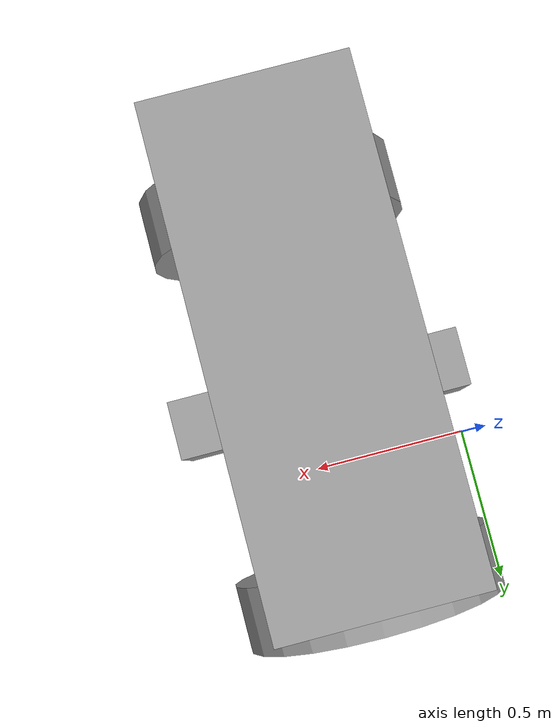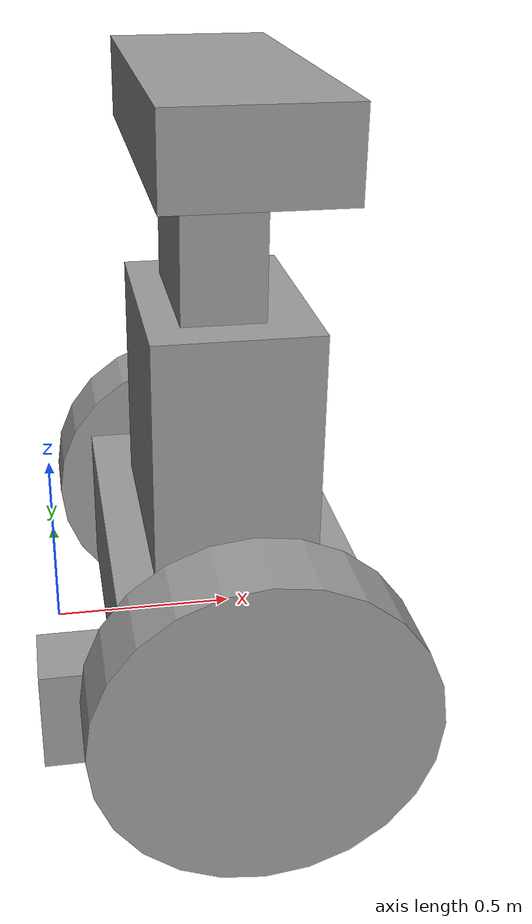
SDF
<?xml version='1.0'?>
<sdf version='1.6'>
  <model name='robo1'>
    <link name='link_0'>
      <pose frame=''>0.431648 -0.223766 0.237143 0 -0 0</pose>
      <inertial>
        <mass>1</mass>
        <inertia>
          <ixx>0.166667</ixx>
          <ixy>0</ixy>
          <ixz>0</ixz>
          <iyy>0.166667</iyy>
          <iyz>0</iyz>
          <izz>0.166667</izz>
        </inertia>
        <pose frame=''>0 0 0 0 -0 0</pose>
      </inertial>
      <self_collide>0</self_collide>
      <kinematic>0</kinematic>
      <gravity>1</gravity>
      <visual name='visual'>
        <pose frame=''>0 0 0 0 -0 0</pose>
        <geometry>
          <box>
            <size>0.6 1 0.4</size>
          </box>
        </geometry>
        <material>
          <lighting>1</lighting>
          <script>
            <uri>file://media/materials/scripts/gazebo.material</uri>
            <name>Gazebo/Grey</name>
          </script>
          <shader type='pixel'>
            <normal_map>__default__</normal_map>
          </shader>
          <ambient>0.3 0.3 0.3 1</ambient>
          <diffuse>0.7 0.7 0.7 1</diffuse>
          <specular>0.01 0.01 0.01 1</specular>
          <emissive>0 0 0 1</emissive>
        </material>
        <transparency>0</transparency>
        <cast_shadows>1</cast_shadows>
      </visual>
      <collision name='collision'>
        <laser_retro>0</laser_retro>
        <max_contacts>10</max_contacts>
        <pose frame=''>0 0 0 0 -0 0</pose>
        <geometry>
          <box>
            <size>0.6 1 0.4</size>
          </box>
        </geometry>
        <surface>
          <friction>
            <ode>
              <mu>1</mu>
              <mu2>1</mu2>
              <fdir1>0 0 0</fdir1>
              <slip1>0</slip1>
              <slip2>0</slip2>
            </ode>
            <torsional>
              <coefficient>1</coefficient>
              <patch_radius>0</patch_radius>
              <surface_radius>0</surface_radius>
              <use_patch_radius>1</use_patch_radius>
              <ode>
                <slip>0</slip>
              </ode>
            </torsional>
          </friction>
          <bounce>
            <restitution_coefficient>0</restitution_coefficient>
            <threshold>1e+06</threshold>
          </bounce>
          <contact>
            <collide_without_contact>0</collide_without_contact>
            <collide_without_contact_bitmask>1</collide_without_contact_bitmask>
            <collide_bitmask>1</collide_bitmask>
            <ode>
              <soft_cfm>0</soft_cfm>
              <soft_erp>0.2</soft_erp>
              <kp>1e+13</kp>
              <kd>1</kd>
              <max_vel>0.01</max_vel>
              <min_depth>0</min_depth>
            </ode>
            <bullet>
              <split_impulse>1</split_impulse>
              <split_impulse_penetration_threshold>-0.01</split_impulse_penetration_threshold>
              <soft_cfm>0</soft_cfm>
              <soft_erp>0.2</soft_erp>
              <kp>1e+13</kp>
              <kd>1</kd>
            </bullet>
          </contact>
        </surface>
      </collision>
    </link>
    <link name='link_10'>
      <pose frame=''>0.431648 -0.223766 1.47714 0 -0 0</pose>
      <inertial>
        <mass>1</mass>
        <inertia>
          <ixx>0.166667</ixx>
          <ixy>0</ixy>
          <ixz>0</ixz>
          <iyy>0.166667</iyy>
          <iyz>0</iyz>
          <izz>0.166667</izz>
        </inertia>
        <pose frame=''>0 0 0 0 -0 0</pose>
      </inertial>
      <self_collide>0</self_collide>
      <kinematic>0</kinematic>
      <visual name='visual'>
        <pose frame=''>0 0 0 0 -0 0</pose>
        <geometry>
          <box>
            <size>0.4 1 0.2</size>
          </box>
        </geometry>
        <material>
          <lighting>1</lighting>
          <script>
            <uri>file://media/materials/scripts/gazebo.material</uri>
            <name>Gazebo/Grey</name>
          </script>
          <shader type='pixel'>
            <normal_map>__default__</normal_map>
          </shader>
          <ambient>0.3 0.3 0.3 1</ambient>
          <diffuse>0.7 0.7 0.7 1</diffuse>
          <specular>0.01 0.01 0.01 1</specular>
          <emissive>0 0 0 1</emissive>
        </material>
        <transparency>0</transparency>
        <cast_shadows>1</cast_shadows>
      </visual>
      <collision name='collision'>
        <laser_retro>0</laser_retro>
        <max_contacts>10</max_contacts>
        <pose frame=''>0 0 0 0 -0 0</pose>
        <geometry>
          <box>
            <size>0.4 1 0.2</size>
          </box>
        </geometry>
        <surface>
          <friction>
            <ode>
              <mu>1</mu>
              <mu2>1</mu2>
              <fdir1>0 0 0</fdir1>
              <slip1>0</slip1>
              <slip2>0</slip2>
            </ode>
            <torsional>
              <coefficient>1</coefficient>
              <patch_radius>0</patch_radius>
              <surface_radius>0</surface_radius>
              <use_patch_radius>1</use_patch_radius>
              <ode>
                <slip>0</slip>
              </ode>
            </torsional>
          </friction>
          <bounce>
            <restitution_coefficient>0</restitution_coefficient>
            <threshold>1e+06</threshold>
          </bounce>
          <contact>
            <collide_without_contact>0</collide_without_contact>
            <collide_without_contact_bitmask>1</collide_without_contact_bitmask>
            <collide_bitmask>1</collide_bitmask>
            <ode>
              <soft_cfm>0</soft_cfm>
              <soft_erp>0.2</soft_erp>
              <kp>1e+13</kp>
              <kd>1</kd>
              <max_vel>0.01</max_vel>
              <min_depth>0</min_depth>
            </ode>
            <bullet>
              <split_impulse>1</split_impulse>
              <split_impulse_penetration_threshold>-0.01</split_impulse_penetration_threshold>
              <soft_cfm>0</soft_cfm>
              <soft_erp>0.2</soft_erp>
              <kp>1e+13</kp>
              <kd>1</kd>
            </bullet>
          </contact>
        </surface>
      </collision>
    </link>
    <link name='link_2'>
      <pose frame=''>0.431648 -0.823804 0.257141 1.5707 -0 0</pose>
      <inertial>
        <mass>1</mass>
        <inertia>
          <ixx>0.145833</ixx>
          <ixy>0</ixy>
          <ixz>0</ixz>
          <iyy>0.145833</iyy>
          <iyz>0</iyz>
          <izz>0.125</izz>
        </inertia>
        <pose frame=''>0 0 0 0 -0 0</pose>
      </inertial>
      <self_collide>0</self_collide>
      <kinematic>0</kinematic>
      <visual name='visual'>
        <pose frame=''>0 0 0 0 -0 0</pose>
        <geometry>
          <cylinder>
            <radius>0.4</radius>
            <length>0.2</length>
          </cylinder>
        </geometry>
        <material>
          <lighting>1</lighting>
          <script>
            <uri>file://media/materials/scripts/gazebo.material</uri>
            <name>Gazebo/Grey</name>
          </script>
          <shader type='pixel'>
            <normal_map>__default__</normal_map>
          </shader>
          <ambient>0.3 0.3 0.3 1</ambient>
          <diffuse>0.7 0.7 0.7 1</diffuse>
          <specular>0.01 0.01 0.01 1</specular>
          <emissive>0 0 0 1</emissive>
        </material>
        <transparency>0</transparency>
        <cast_shadows>1</cast_shadows>
      </visual>
      <collision name='collision'>
        <laser_retro>0</laser_retro>
        <max_contacts>10</max_contacts>
        <pose frame=''>0 0 0 0 -0 0</pose>
        <geometry>
          <cylinder>
            <radius>0.4</radius>
            <length>0.2</length>
          </cylinder>
        </geometry>
        <surface>
          <friction>
            <ode>
              <mu>1</mu>
              <mu2>1</mu2>
              <fdir1>0 0 0</fdir1>
              <slip1>0</slip1>
              <slip2>0</slip2>
            </ode>
            <torsional>
              <coefficient>1</coefficient>
              <patch_radius>0</patch_radius>
              <surface_radius>0</surface_radius>
              <use_patch_radius>1</use_patch_radius>
              <ode>
                <slip>0</slip>
              </ode>
            </torsional>
          </friction>
          <bounce>
            <restitution_coefficient>0</restitution_coefficient>
            <threshold>1e+06</threshold>
          </bounce>
          <contact>
            <collide_without_contact>0</collide_without_contact>
            <collide_without_contact_bitmask>1</collide_without_contact_bitmask>
            <collide_bitmask>1</collide_bitmask>
            <ode>
              <soft_cfm>0</soft_cfm>
              <soft_erp>0.2</soft_erp>
              <kp>1e+13</kp>
              <kd>1</kd>
              <max_vel>0.01</max_vel>
              <min_depth>0</min_depth>
            </ode>
            <bullet>
              <split_impulse>1</split_impulse>
              <split_impulse_penetration_threshold>-0.01</split_impulse_penetration_threshold>
              <soft_cfm>0</soft_cfm>
              <soft_erp>0.2</soft_erp>
              <kp>1e+13</kp>
              <kd>1</kd>
            </bullet>
          </contact>
        </surface>
      </collision>
    </link>
    <link name='link_2_clone'>
      <pose frame=''>0.431648 0.376273 0.257143 1.5707 -0 0</pose>
      <inertial>
        <mass>1</mass>
        <inertia>
          <ixx>0.145833</ixx>
          <ixy>0</ixy>
          <ixz>0</ixz>
          <iyy>0.145833</iyy>
          <iyz>0</iyz>
          <izz>0.125</izz>
        </inertia>
        <pose frame=''>0 0 0 0 -0 0</pose>
      </inertial>
      <self_collide>0</self_collide>
      <kinematic>0</kinematic>
      <visual name='visual'>
        <pose frame=''>0 0 0 0 -0 0</pose>
        <geometry>
          <cylinder>
            <radius>0.4</radius>
            <length>0.2</length>
          </cylinder>
        </geometry>
        <material>
          <lighting>1</lighting>
          <script>
            <uri>file://media/materials/scripts/gazebo.material</uri>
            <name>Gazebo/Grey</name>
          </script>
          <shader type='pixel'>
            <normal_map>__default__</normal_map>
          </shader>
          <ambient>0.3 0.3 0.3 1</ambient>
          <diffuse>0.7 0.7 0.7 1</diffuse>
          <specular>0.01 0.01 0.01 1</specular>
          <emissive>0 0 0 1</emissive>
        </material>
        <transparency>0</transparency>
        <cast_shadows>1</cast_shadows>
      </visual>
      <collision name='collision'>
        <laser_retro>0</laser_retro>
        <max_contacts>10</max_contacts>
        <pose frame=''>0 0 0 0 -0 0</pose>
        <geometry>
          <cylinder>
            <radius>0.4</radius>
            <length>0.2</length>
          </cylinder>
        </geometry>
        <surface>
          <friction>
            <ode>
              <mu>1</mu>
              <mu2>1</mu2>
              <fdir1>0 0 0</fdir1>
              <slip1>0</slip1>
              <slip2>0</slip2>
            </ode>
            <torsional>
              <coefficient>1</coefficient>
              <patch_radius>0</patch_radius>
              <surface_radius>0</surface_radius>
              <use_patch_radius>1</use_patch_radius>
              <ode>
                <slip>0</slip>
              </ode>
            </torsional>
          </friction>
          <bounce>
            <restitution_coefficient>0</restitution_coefficient>
            <threshold>1e+06</threshold>
          </bounce>
          <contact>
            <collide_without_contact>0</collide_without_contact>
            <collide_without_contact_bitmask>1</collide_without_contact_bitmask>
            <collide_bitmask>1</collide_bitmask>
            <ode>
              <soft_cfm>0</soft_cfm>
              <soft_erp>0.2</soft_erp>
              <kp>1e+13</kp>
              <kd>1</kd>
              <max_vel>0.01</max_vel>
              <min_depth>0</min_depth>
            </ode>
            <bullet>
              <split_impulse>1</split_impulse>
              <split_impulse_penetration_threshold>-0.01</split_impulse_penetration_threshold>
              <soft_cfm>0</soft_cfm>
              <soft_erp>0.2</soft_erp>
              <kp>1e+13</kp>
              <kd>1</kd>
            </bullet>
          </contact>
        </surface>
      </collision>
    </link>
    <link name='link_4'>
      <pose frame=''>0.431648 -0.243766 -0.112857 0 -0 0</pose>
      <inertial>
        <mass>1</mass>
        <inertia>
          <ixx>0.166667</ixx>
          <ixy>0</ixy>
          <ixz>0</ixz>
          <iyy>0.166667</iyy>
          <iyz>0</iyz>
          <izz>0.166667</izz>
        </inertia>
        <pose frame=''>0 0 0 0 -0 0</pose>
      </inertial>
      <self_collide>0</self_collide>
      <kinematic>0</kinematic>
      <visual name='visual'>
        <pose frame=''>0 0 0 0 -0 0</pose>
        <geometry>
          <box>
            <size>1 0.2 0.3</size>
          </box>
        </geometry>
        <material>
          <lighting>1</lighting>
          <script>
            <uri>file://media/materials/scripts/gazebo.material</uri>
            <name>Gazebo/Grey</name>
          </script>
          <shader type='pixel'>
            <normal_map>__default__</normal_map>
          </shader>
          <ambient>0.3 0.3 0.3 1</ambient>
          <diffuse>0.7 0.7 0.7 1</diffuse>
          <specular>0.01 0.01 0.01 1</specular>
          <emissive>0 0 0 1</emissive>
        </material>
        <transparency>0</transparency>
        <cast_shadows>1</cast_shadows>
      </visual>
      <collision name='collision'>
        <laser_retro>0</laser_retro>
        <max_contacts>10</max_contacts>
        <pose frame=''>0 0 0 0 -0 0</pose>
        <geometry>
          <box>
            <size>1 0.2 0.3</size>
          </box>
        </geometry>
        <surface>
          <friction>
            <ode>
              <mu>1</mu>
              <mu2>1</mu2>
              <fdir1>0 0 0</fdir1>
              <slip1>0</slip1>
              <slip2>0</slip2>
            </ode>
            <torsional>
              <coefficient>1</coefficient>
              <patch_radius>0</patch_radius>
              <surface_radius>0</surface_radius>
              <use_patch_radius>1</use_patch_radius>
              <ode>
                <slip>0</slip>
              </ode>
            </torsional>
          </friction>
          <bounce>
            <restitution_coefficient>0</restitution_coefficient>
            <threshold>1e+06</threshold>
          </bounce>
          <contact>
            <collide_without_contact>0</collide_without_contact>
            <collide_without_contact_bitmask>1</collide_without_contact_bitmask>
            <collide_bitmask>1</collide_bitmask>
            <ode>
              <soft_cfm>0</soft_cfm>
              <soft_erp>0.2</soft_erp>
              <kp>1e+13</kp>
              <kd>1</kd>
              <max_vel>0.01</max_vel>
              <min_depth>0</min_depth>
            </ode>
            <bullet>
              <split_impulse>1</split_impulse>
              <split_impulse_penetration_threshold>-0.01</split_impulse_penetration_threshold>
              <soft_cfm>0</soft_cfm>
              <soft_erp>0.2</soft_erp>
              <kp>1e+13</kp>
              <kd>1</kd>
            </bullet>
          </contact>
        </surface>
      </collision>
    </link>
    <link name='link_6'>
      <pose frame=''>0.431648 -0.223766 0.737143 0 -0 0</pose>
      <inertial>
        <mass>1</mass>
        <inertia>
          <ixx>0.166667</ixx>
          <ixy>0</ixy>
          <ixz>0</ixz>
          <iyy>0.166667</iyy>
          <iyz>0</iyz>
          <izz>0.166667</izz>
        </inertia>
        <pose frame=''>0 0 0 0 -0 0</pose>
      </inertial>
      <self_collide>0</self_collide>
      <kinematic>0</kinematic>
      <visual name='visual'>
        <pose frame=''>0 0 0 0 -0 0</pose>
        <geometry>
          <box>
            <size>0.4 0.6 0.6</size>
          </box>
        </geometry>
        <material>
          <lighting>1</lighting>
          <script>
            <uri>file://media/materials/scripts/gazebo.material</uri>
            <name>Gazebo/Grey</name>
          </script>
          <shader type='pixel'>
            <normal_map>__default__</normal_map>
          </shader>
          <ambient>0.3 0.3 0.3 1</ambient>
          <diffuse>0.7 0.7 0.7 1</diffuse>
          <specular>0.01 0.01 0.01 1</specular>
          <emissive>0 0 0 1</emissive>
        </material>
        <transparency>0</transparency>
        <cast_shadows>1</cast_shadows>
      </visual>
      <collision name='collision'>
        <laser_retro>0</laser_retro>
        <max_contacts>10</max_contacts>
        <pose frame=''>0 0 0 0 -0 0</pose>
        <geometry>
          <box>
            <size>0.4 0.6 0.6</size>
          </box>
        </geometry>
        <surface>
          <friction>
            <ode>
              <mu>1</mu>
              <mu2>1</mu2>
              <fdir1>0 0 0</fdir1>
              <slip1>0</slip1>
              <slip2>0</slip2>
            </ode>
            <torsional>
              <coefficient>1</coefficient>
              <patch_radius>0</patch_radius>
              <surface_radius>0</surface_radius>
              <use_patch_radius>1</use_patch_radius>
              <ode>
                <slip>0</slip>
              </ode>
            </torsional>
          </friction>
          <bounce>
            <restitution_coefficient>0</restitution_coefficient>
            <threshold>1e+06</threshold>
          </bounce>
          <contact>
            <collide_without_contact>0</collide_without_contact>
            <collide_without_contact_bitmask>1</collide_without_contact_bitmask>
            <collide_bitmask>1</collide_bitmask>
            <ode>
              <soft_cfm>0</soft_cfm>
              <soft_erp>0.2</soft_erp>
              <kp>1e+13</kp>
              <kd>1</kd>
              <max_vel>0.01</max_vel>
              <min_depth>0</min_depth>
            </ode>
            <bullet>
              <split_impulse>1</split_impulse>
              <split_impulse_penetration_threshold>-0.01</split_impulse_penetration_threshold>
              <soft_cfm>0</soft_cfm>
              <soft_erp>0.2</soft_erp>
              <kp>1e+13</kp>
              <kd>1</kd>
            </bullet>
          </contact>
        </surface>
      </collision>
    </link>
    <link name='link_8'>
      <pose frame=''>0.411648 -0.223766 1.17714 0 -0 0</pose>
      <inertial>
        <mass>1</mass>
        <inertia>
          <ixx>0.166667</ixx>
          <ixy>0</ixy>
          <ixz>0</ixz>
          <iyy>0.166667</iyy>
          <iyz>0</iyz>
          <izz>0.166667</izz>
        </inertia>
        <pose frame=''>0 0 0 0 -0 0</pose>
      </inertial>
      <self_collide>0</self_collide>
      <kinematic>0</kinematic>
      <visual name='visual'>
        <pose frame=''>0 0 0 0 -0 0</pose>
        <geometry>
          <box>
            <size>0.2 0.4 0.4</size>
          </box>
        </geometry>
        <material>
          <lighting>1</lighting>
          <script>
            <uri>file://media/materials/scripts/gazebo.material</uri>
            <name>Gazebo/Grey</name>
          </script>
          <shader type='pixel'>
            <normal_map>__default__</normal_map>
          </shader>
          <ambient>0.3 0.3 0.3 1</ambient>
          <diffuse>0.7 0.7 0.7 1</diffuse>
          <specular>0.01 0.01 0.01 1</specular>
          <emissive>0 0 0 1</emissive>
        </material>
        <transparency>0</transparency>
        <cast_shadows>1</cast_shadows>
      </visual>
      <collision name='collision'>
        <laser_retro>0</laser_retro>
        <max_contacts>10</max_contacts>
        <pose frame=''>0 0 0 0 -0 0</pose>
        <geometry>
          <box>
            <size>0.2 0.4 0.4</size>
          </box>
        </geometry>
        <surface>
          <friction>
            <ode>
              <mu>1</mu>
              <mu2>1</mu2>
              <fdir1>0 0 0</fdir1>
              <slip1>0</slip1>
              <slip2>0</slip2>
            </ode>
            <torsional>
              <coefficient>1</coefficient>
              <patch_radius>0</patch_radius>
              <surface_radius>0</surface_radius>
              <use_patch_radius>1</use_patch_radius>
              <ode>
                <slip>0</slip>
              </ode>
            </torsional>
          </friction>
          <bounce>
            <restitution_coefficient>0</restitution_coefficient>
            <threshold>1e+06</threshold>
          </bounce>
          <contact>
            <collide_without_contact>0</collide_without_contact>
            <collide_without_contact_bitmask>1</collide_without_contact_bitmask>
            <collide_bitmask>1</collide_bitmask>
            <ode>
              <soft_cfm>0</soft_cfm>
              <soft_erp>0.2</soft_erp>
              <kp>1e+13</kp>
              <kd>1</kd>
              <max_vel>0.01</max_vel>
              <min_depth>0</min_depth>
            </ode>
            <bullet>
              <split_impulse>1</split_impulse>
              <split_impulse_penetration_threshold>-0.01</split_impulse_penetration_threshold>
              <soft_cfm>0</soft_cfm>
              <soft_erp>0.2</soft_erp>
              <kp>1e+13</kp>
              <kd>1</kd>
            </bullet>
          </contact>
        </surface>
      </collision>
    </link>
    <joint name='link_0_JOINT_0' type='revolute'>
      <parent>link_0</parent>
      <child>link_2</child>
      <pose frame=''>0 0 0 0 -0 0</pose>
      <axis>
        <xyz>0 0 1</xyz>
        <use_parent_model_frame>0</use_parent_model_frame>
        <limit>
          <lower>-1.79769e+308</lower>
          <upper>1.79769e+308</upper>
          <effort>-1</effort>
          <velocity>-1</velocity>
        </limit>
        <dynamics>
          <spring_reference>0</spring_reference>
          <spring_stiffness>0</spring_stiffness>
          <damping>0</damping>
          <friction>0</friction>
        </dynamics>
      </axis>
      <physics>
        <ode>
          <limit>
            <cfm>0</cfm>
            <erp>0.2</erp>
          </limit>
          <suspension>
            <cfm>0</cfm>
            <erp>0.2</erp>
          </suspension>
        </ode>
      </physics>
    </joint>
    <joint name='link_0_JOINT_1' type='revolute'>
      <parent>link_0</parent>
      <child>link_2_clone</child>
      <pose frame=''>0 0 0 0 -0 0</pose>
      <axis>
        <xyz>0 0 1</xyz>
        <use_parent_model_frame>0</use_parent_model_frame>
        <limit>
          <lower>-1.79769e+308</lower>
          <upper>1.79769e+308</upper>
          <effort>-1</effort>
          <velocity>-1</velocity>
        </limit>
        <dynamics>
          <spring_reference>0</spring_reference>
          <spring_stiffness>0</spring_stiffness>
          <damping>0</damping>
          <friction>0</friction>
        </dynamics>
      </axis>
      <physics>
        <ode>
          <limit>
            <cfm>0</cfm>
            <erp>0.2</erp>
          </limit>
          <suspension>
            <cfm>0</cfm>
            <erp>0.2</erp>
          </suspension>
        </ode>
      </physics>
    </joint>
    <joint name='link_0_JOINT_2' type='fixed'>
      <parent>link_0</parent>
      <child>link_4</child>
      <pose frame=''>0 0 0 0 -0 0</pose>
      <physics>
        <ode>
          <limit>
            <cfm>0</cfm>
            <erp>0.2</erp>
          </limit>
          <suspension>
            <cfm>0</cfm>
            <erp>0.2</erp>
          </suspension>
        </ode>
      </physics>
    </joint>
    <joint name='link_0_JOINT_3' type='fixed'>
      <parent>link_0</parent>
      <child>link_6</child>
      <pose frame=''>0 0 0 0 -0 0</pose>
      <physics>
        <ode>
          <limit>
            <cfm>0</cfm>
            <erp>0.2</erp>
          </limit>
          <suspension>
            <cfm>0</cfm>
            <erp>0.2</erp>
          </suspension>
        </ode>
      </physics>
    </joint>
    <joint name='link_0_JOINT_6' type='fixed'>
      <parent>link_0</parent>
      <child>link_6</child>
      <pose frame=''>0 0 0 0 -0 0</pose>
      <physics>
        <ode>
          <limit>
            <cfm>0</cfm>
            <erp>0.2</erp>
          </limit>
          <suspension>
            <cfm>0</cfm>
            <erp>0.2</erp>
          </suspension>
        </ode>
      </physics>
    </joint>
    <joint name='link_4_JOINT_7' type='fixed'>
      <parent>link_0</parent>
      <child>link_4</child>
      <pose frame=''>0 0 0 0 -0 0</pose>
      <physics>
        <ode>
          <limit>
            <cfm>0</cfm>
            <erp>0.2</erp>
          </limit>
          <suspension>
            <cfm>0</cfm>
            <erp>0.2</erp>
          </suspension>
        </ode>
      </physics>
    </joint>
    <joint name='link_6_JOINT_4' type='fixed'>
      <parent>link_6</parent>
      <child>link_8</child>
      <pose frame=''>0 0 0 0 -0 0</pose>
      <physics>
        <ode>
          <limit>
            <cfm>0</cfm>
            <erp>0.2</erp>
          </limit>
          <suspension>
            <cfm>0</cfm>
            <erp>0.2</erp>
          </suspension>
        </ode>
      </physics>
    </joint>
    <joint name='link_8_JOINT_5' type='fixed'>
      <parent>link_8</parent>
      <child>link_10</child>
      <pose frame=''>0 0 0 0 -0 0</pose>
      <physics>
        <ode>
          <limit>
            <cfm>0</cfm>
            <erp>0.2</erp>
          </limit>
          <suspension>
            <cfm>0</cfm>
            <erp>0.2</erp>
          </suspension>
        </ode>
      </physics>
    </joint>
    <static>0</static>
    <allow_auto_disable>1</allow_auto_disable>
  </model>
</sdf>
